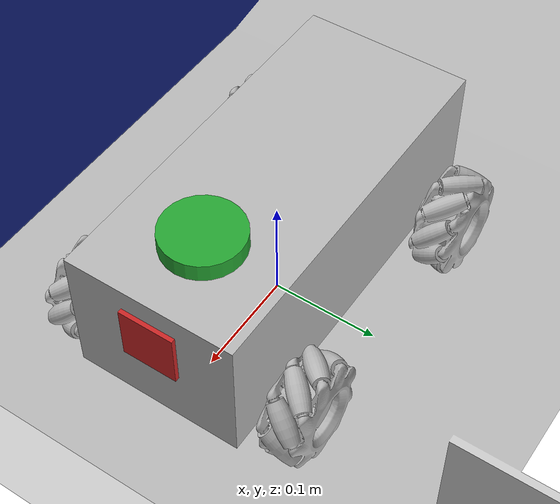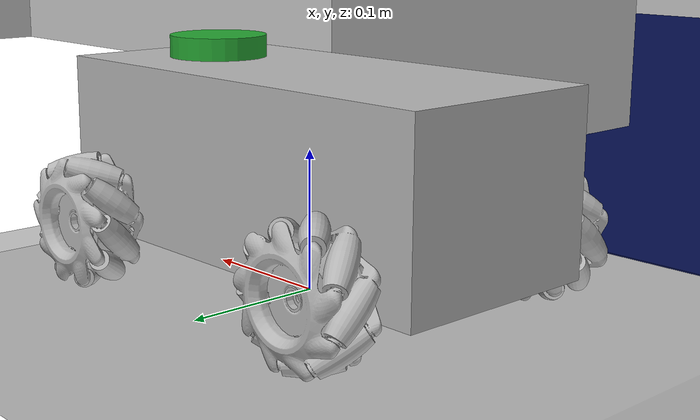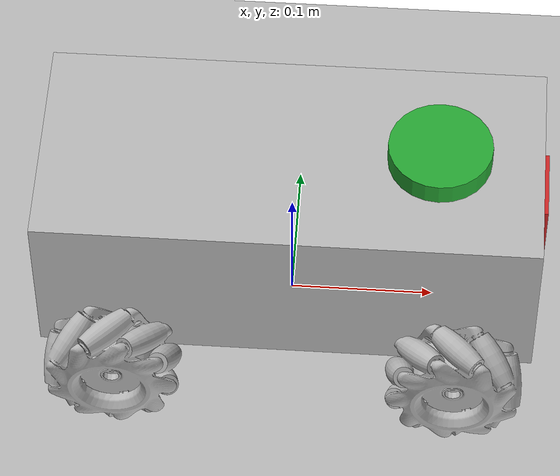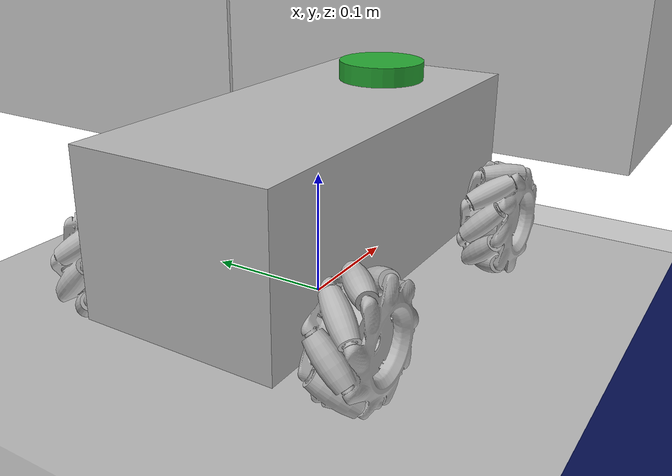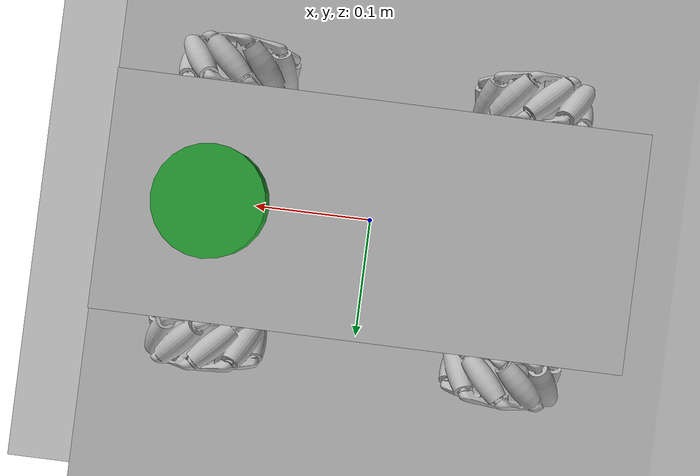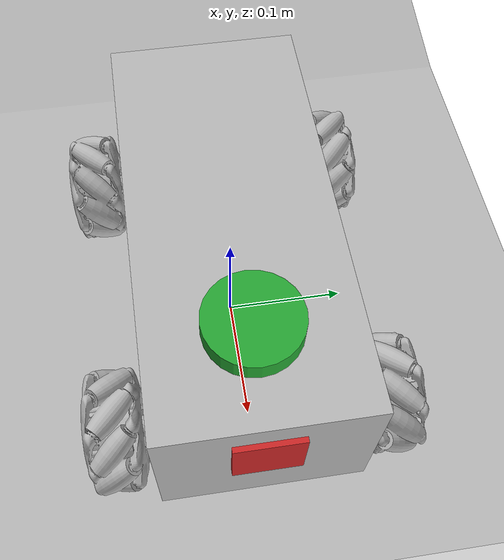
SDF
<sdf version="1.7">
 <world name="default">
  <light name="sun" type="directional">
   <pose>0 0 10 0 -0 0</pose>
   <diffuse>0.8 0.8 0.8 1</diffuse>
   <specular>0.2 0.2 0.2 1</specular>
   <attenuation>
    <range>1000</range>
    <constant>0.9</constant>
    <linear>0.01</linear>
    <quadratic>0.001</quadratic>
   </attenuation>
   <direction>-0.5 0.1 -0.9</direction>
   <spot><inner_angle>0</inner_angle><outer_angle>0</outer_angle><falloff>0</falloff></spot>
  </light>
  <model name="ground_plane">
   <static>1</static>
   <link name="link">
    <collision name="collision">
     <geometry><plane><normal>0 0 1</normal><size>100 100</size></plane></geometry>
     <surface>
      <contact><collide_bitmask>65535</collide_bitmask></contact>
      <friction><ode><mu>100</mu><mu2>50</mu2></ode></friction>
     </surface>
    </collision>
    <visual name="visual">
     <cast_shadows>0</cast_shadows>
     <geometry><plane><normal>0 0 1</normal><size>100 100</size></plane></geometry>
     <material>
      <script><uri>file://media/materials/scripts/gazebo.material</uri><name>Gazebo/Grey</name></script>
     </material>
    </visual>
   </link>
  </model>
  <gravity>0 0 -9.8</gravity>
  <magnetic_field>6e-06 2.3e-05 -4.2e-05</magnetic_field>
  <atmosphere type="adiabatic"/>
  <physics type="ode">
   <max_step_size>0.001</max_step_size>
   <real_time_factor>1</real_time_factor>
   <real_time_update_rate>1000</real_time_update_rate>
  </physics>
  <scene><ambient>0.4 0.4 0.4 1</ambient><background>0.7 0.7 0.7 1</background><shadows>1</shadows></scene>
  <spherical_coordinates>
   <surface_model>EARTH_WGS84</surface_model>
   <latitude_deg>0</latitude_deg>
   <longitude_deg>0</longitude_deg>
   <elevation>0</elevation>
   <heading_deg>0</heading_deg>
  </spherical_coordinates>
  <model name="robot">
   <link name="ucar_02">
    <inertial>
     <pose>0.000311 0 0.093608 0 -0 0</pose>
     <mass>8.03</mass>
     <inertia>
      <ixx>0.0262827</ixx>
      <ixy>0</ixy>
      <ixz>-9.49791e-05</ixz>
      <iyy>0.0887722</iyy>
      <iyz>0</iyz>
      <izz>0.0941139</izz>
     </inertia>
    </inertial>
    <collision name="ucar_02_fixed_joint_lump__base_link_collision">
     <pose>0 0 0.0935 0 -0 0</pose>
     <geometry><box><size>0.342 0.154 0.125</size></box></geometry>
    </collision>
    <collision name="ucar_02_fixed_joint_lump__camera_link_collision_1">
     <pose>0.15 0 0.11 0 -0 0</pose>
     <geometry><box><size>0.05 0.05 0.05</size></box></geometry>
    </collision>
    <collision name="ucar_02_fixed_joint_lump__laser_frame_collision_2">
     <pose>0.1 0 0.164 0 -0 0</pose>
     <geometry><cylinder><length>0.016</length><radius>0.0355</radius></cylinder></geometry>
    </collision>
    <collision name="ucar_02_fixed_joint_lump__imu_link_collision_3">
     <pose>0 0 0.0935 0 -0 0</pose>
     <geometry><box><size>0.05 0.05 0.05</size></box></geometry>
    </collision>
    <visual name="ucar_02_fixed_joint_lump__base_link_visual">
     <pose>0 0 0.0935 0 -0 0</pose>
     <geometry><box><size>0.342 0.154 0.125</size></box></geometry>
    </visual>
    <visual name="ucar_02_fixed_joint_lump__camera_link_visual_1">
     <pose>0.15 0 0.11 0 -0 0</pose>
     <geometry><box><size>0.05 0.05 0.05</size></box></geometry>
     <material>
      <script><name>Gazebo/Red</name><uri>file://media/materials/scripts/gazebo.material</uri></script>
     </material>
    </visual>
    <visual name="ucar_02_fixed_joint_lump__laser_frame_visual_2">
     <pose>0.1 0 0.164 0 -0 0</pose>
     <geometry><cylinder><length>0.016</length><radius>0.0355</radius></cylinder></geometry>
     <material>
      <script><name>Gazebo/Green</name><uri>file://media/materials/scripts/gazebo.material</uri></script>
     </material>
    </visual>
    <visual name="ucar_02_fixed_joint_lump__imu_link_visual_3">
     <pose>0 0 0.0935 0 -0 0</pose>
     <geometry><box><size>0.05 0.05 0.05</size></box></geometry>
     <material>
      <script><name>Gazebo/Orange</name><uri>file://media/materials/scripts/gazebo.material</uri></script>
     </material>
    </visual>
    <sensor name="camera1" type="camera">
     <update_rate>30</update_rate>
     <camera name="head">
      <horizontal_fov>2.17872</horizontal_fov>
      <image><width>640</width><height>480</height><format>R8G8B8</format></image>
      <clip><near>0.045</near><far>100</far></clip>
      <noise><type>gaussian</type><mean>0</mean><stddev>0.007</stddev></noise>
     </camera>
     <plugin name="camera_controller" filename="libgazebo_ros_camera.so">
      <alwaysOn>1</alwaysOn>
      <updateRate>30.0</updateRate>
      <cameraName>/</cameraName>
      <imageTopicName>cam</imageTopicName>
      <cameraInfoTopicName>camera_info</cameraInfoTopicName>
      <frameName>camera_link</frameName>
      <hackBaseline>0.07</hackBaseline>
      <distortionK1>0.0</distortionK1>
      <distortionK2>0.0</distortionK2>
      <distortionK3>0.0</distortionK3>
      <distortionT1>0.0</distortionT1>
      <distortionT2>0.0</distortionT2>
      <robotNamespace>/</robotNamespace>
     </plugin>
     <pose>0.15 0 0.11 0 -0 0</pose>
    </sensor>
    <sensor name="head_hokuyo_sensor" type="ray">
     <visualize>0</visualize>
     <update_rate>12</update_rate>
     <ray>
      <scan>
       <horizontal>
        <samples>750</samples>
        <resolution>0.12</resolution>
        <min_angle>-3.14159</min_angle>
        <max_angle>3.14159</max_angle>
       </horizontal>
       <vertical><samples>1</samples><min_angle>0</min_angle><max_angle>0</max_angle></vertical>
      </scan>
      <range><min>0.12</min><max>16</max><resolution>0.48</resolution></range>
      <noise><type>gaussian</type><mean>0</mean><stddev>0.01</stddev></noise>
     </ray>
     <plugin name="gazebo_ros_head_hokuyo_controller" filename="libgazebo_ros_laser.so">
      <topicName>/scan</topicName>
      <frameName>laser_frame</frameName>
      <robotNamespace>/</robotNamespace>
     </plugin>
     <pose>0.1 0 0.164 0 -0 0</pose>
    </sensor>
    <sensor name="imu_sensor" type="imu">
     <always_on>1</always_on>
     <update_rate>100</update_rate>
     <visualize>1</visualize>
     <topic>__default_topic__</topic>
     <plugin name="imu_plugin" filename="libgazebo_ros_imu_sensor.so">
      <topicName>imu</topicName>
      <bodyName>imu_link</bodyName>
      <updateRateHZ>100.0</updateRateHZ>
      <gaussianNoise>0.0</gaussianNoise>
      <xyzOffset>0 0 0</xyzOffset>
      <rpyOffset>0 0 0</rpyOffset>
      <frameName>imu_link</frameName>
      <robotNamespace>/</robotNamespace>
     </plugin>
     <pose>0 0 0.0935 0 -0 0</pose>
    </sensor>
   </link>
   <joint name="base_to_wheel1" type="revolute">
    <pose relative_to="ucar_02">0.117 0.106 0.047 0 -0 0</pose>
    <parent>ucar_02</parent>
    <child>wheel_1</child>
    <axis>
     <xyz>0 1 0</xyz>
     <limit><effort>1</effort><velocity>33.504</velocity><lower>-1e+16</lower><upper>1e+16</upper></limit>
     <dynamics><spring_reference>0</spring_reference><spring_stiffness>0</spring_stiffness></dynamics>
    </axis>
   </joint>
   <link name="wheel_1">
    <pose relative_to="base_to_wheel1">0 0 0 0 -0 0</pose>
    <inertial>
     <mass>0.5</mass>
     <inertia>
      <ixx>0.000334042</ixx>
      <ixy>0</ixy>
      <ixz>0</ixz>
      <iyy>0.000334042</iyy>
      <iyz>0</iyz>
      <izz>0.00055225</izz>
     </inertia>
    </inertial>
    <collision name="wheel_1_collision">
     <pose>0 0 0 1.5709 -0 0</pose>
     <geometry><cylinder><length>0.044</length><radius>0.047</radius></cylinder></geometry>
    </collision>
    <visual name="wheel_1_visual">
     <geometry>
      <mesh>
       <scale>1 1 1</scale>
       <uri>/home/cygnusx/LINUX/ROS/my_gazebo_sim_pro/src/urdf_test/meshes/FL_r47_w44.dae</uri>
      </mesh>
     </geometry>
    </visual>
   </link>
   <joint name="base_to_wheel2" type="revolute">
    <pose relative_to="ucar_02">-0.117 0.106 0.047 0 -0 0</pose>
    <parent>ucar_02</parent>
    <child>wheel_2</child>
    <axis>
     <xyz>0 1 0</xyz>
     <limit><effort>1</effort><velocity>33.504</velocity><lower>-1e+16</lower><upper>1e+16</upper></limit>
     <dynamics><spring_reference>0</spring_reference><spring_stiffness>0</spring_stiffness></dynamics>
    </axis>
   </joint>
   <link name="wheel_2">
    <pose relative_to="base_to_wheel2">0 0 0 0 -0 0</pose>
    <inertial>
     <mass>0.5</mass>
     <inertia>
      <ixx>0.000334042</ixx>
      <ixy>0</ixy>
      <ixz>0</ixz>
      <iyy>0.000334042</iyy>
      <iyz>0</iyz>
      <izz>0.00055225</izz>
     </inertia>
    </inertial>
    <collision name="wheel_2_collision">
     <pose>0 0 0 1.5709 -0 0</pose>
     <geometry><cylinder><length>0.044</length><radius>0.047</radius></cylinder></geometry>
    </collision>
    <visual name="wheel_2_visual">
     <geometry>
      <mesh>
       <scale>1 1 1</scale>
       <uri>/home/cygnusx/LINUX/ROS/my_gazebo_sim_pro/src/urdf_test/meshes/BL_r47_w44.dae</uri>
      </mesh>
     </geometry>
    </visual>
   </link>
   <joint name="base_to_wheel3" type="revolute">
    <pose relative_to="ucar_02">0.117 -0.106 0.047 0 -0 0</pose>
    <parent>ucar_02</parent>
    <child>wheel_3</child>
    <axis>
     <xyz>0 -1 0</xyz>
     <limit><effort>1</effort><velocity>33.504</velocity><lower>-1e+16</lower><upper>1e+16</upper></limit>
     <dynamics><spring_reference>0</spring_reference><spring_stiffness>0</spring_stiffness></dynamics>
    </axis>
   </joint>
   <link name="wheel_3">
    <pose relative_to="base_to_wheel3">0 0 0 0 -0 0</pose>
    <inertial>
     <mass>0.5</mass>
     <inertia>
      <ixx>0.000334042</ixx>
      <ixy>0</ixy>
      <ixz>0</ixz>
      <iyy>0.000334042</iyy>
      <iyz>0</iyz>
      <izz>0.00055225</izz>
     </inertia>
    </inertial>
    <collision name="wheel_3_collision">
     <pose>0 0 0 1.5709 -0 0</pose>
     <geometry><cylinder><length>0.044</length><radius>0.047</radius></cylinder></geometry>
    </collision>
    <visual name="wheel_3_visual">
     <geometry>
      <mesh>
       <scale>1 1 1</scale>
       <uri>/home/cygnusx/LINUX/ROS/my_gazebo_sim_pro/src/urdf_test/meshes/FR_r47_w44.dae</uri>
      </mesh>
     </geometry>
    </visual>
   </link>
   <joint name="base_to_wheel4" type="revolute">
    <pose relative_to="ucar_02">-0.117 -0.106 0.047 0 -0 0</pose>
    <parent>ucar_02</parent>
    <child>wheel_4</child>
    <axis>
     <xyz>0 -1 0</xyz>
     <limit><effort>1</effort><velocity>33.504</velocity><lower>-1e+16</lower><upper>1e+16</upper></limit>
     <dynamics><spring_reference>0</spring_reference><spring_stiffness>0</spring_stiffness></dynamics>
    </axis>
   </joint>
   <link name="wheel_4">
    <pose relative_to="base_to_wheel4">0 0 0 0 -0 0</pose>
    <inertial>
     <mass>0.5</mass>
     <inertia>
      <ixx>0.000334042</ixx>
      <ixy>0</ixy>
      <ixz>0</ixz>
      <iyy>0.000334042</iyy>
      <iyz>0</iyz>
      <izz>0.00055225</izz>
     </inertia>
    </inertial>
    <collision name="wheel_4_collision">
     <pose>0 0 0 1.5709 -0 0</pose>
     <geometry><cylinder><length>0.044</length><radius>0.047</radius></cylinder></geometry>
    </collision>
    <visual name="wheel_4_visual">
     <geometry>
      <mesh>
       <scale>1 1 1</scale>
       <uri>/home/cygnusx/LINUX/ROS/my_gazebo_sim_pro/src/urdf_test/meshes/BR_r47_w44.dae</uri>
      </mesh>
     </geometry>
    </visual>
   </link>
   <static>0</static>
   <plugin name="mecanum_controller" filename="libgazebo_ros_planar_move.so">
    <alwaysOn>1</alwaysOn>
    <updateRate>20.0</updateRate>
    <commandTopic>cmd_vel</commandTopic>
    <odometryTopic>odom</odometryTopic>
    <odometryFrame>odom</odometryFrame>
    <leftFrontJoint>base_to_wheel1</leftFrontJoint>
    <rightFrontJoint>base_to_wheel3</rightFrontJoint>
    <leftRearJoint>base_to_wheel2</leftRearJoint>
    <rightRearJoint>base_to_wheel4</rightRearJoint>
    <odometryRate>20.0</odometryRate>
    <broadcastTF>0</broadcastTF>
    <robotBaseFrame>ucar_02</robotBaseFrame>
    <cmdTimeout>-1.0</cmdTimeout>
    <robotNamespace>/</robotNamespace>
   </plugin>
   <pose>-0.000161 0.000678 -4e-06 -2e-06 5.4e-05 -0.00045</pose>
  </model>
  <model name="2024_19th_world">
   <link name="link_0">
    <inertial>
     <mass>1</mass>
     <inertia>
      <ixx>0.166667</ixx>
      <ixy>0</ixy>
      <ixz>0</ixz>
      <iyy>0.166667</iyy>
      <iyz>0</iyz>
      <izz>0.166667</izz>
     </inertia>
    </inertial>
    <pose>4e-06 3e-06 0 0 -0 0</pose>
    <visual name="visual">
     <geometry><mesh><uri>model://2024_19th_world/2024.dae</uri><scale>1 1 1</scale></mesh></geometry>
    </visual>
    <collision name="collision">
     <geometry><mesh><uri>model://2024_19th_world/2024.dae</uri><scale>1 1 1</scale></mesh></geometry>
     <surface>
      <friction>
       <ode><mu>1</mu><mu2>1</mu2><fdir1>0 0 0</fdir1><slip1>0</slip1><slip2>0</slip2></ode>
       <torsional>
        <coefficient>1</coefficient>
        <patch_radius>0</patch_radius>
        <surface_radius>0</surface_radius>
        <use_patch_radius>1</use_patch_radius>
        <ode><slip>0</slip></ode>
       </torsional>
      </friction>
      <bounce><restitution_coefficient>0</restitution_coefficient><threshold>1e+06</threshold></bounce>
      <contact>
       <collide_without_contact>0</collide_without_contact>
       <collide_without_contact_bitmask>1</collide_without_contact_bitmask>
       <collide_bitmask>1</collide_bitmask>
       <ode>
        <soft_cfm>0</soft_cfm>
        <soft_erp>0.2</soft_erp>
        <kp>1e+13</kp>
        <kd>1</kd>
        <max_vel>0.01</max_vel>
        <min_depth>0</min_depth>
       </ode>
       <bullet>
        <split_impulse>1</split_impulse>
        <split_impulse_penetration_threshold>-0.01</split_impulse_penetration_threshold>
        <soft_cfm>0</soft_cfm>
        <soft_erp>0.2</soft_erp>
        <kp>1e+13</kp>
        <kd>1</kd>
       </bullet>
      </contact>
     </surface>
    </collision>
   </link>
   <static>1</static>
   <pose>0.232139 -0.734396 0 0 -0 0</pose>
  </model>
 </world>
</sdf>
